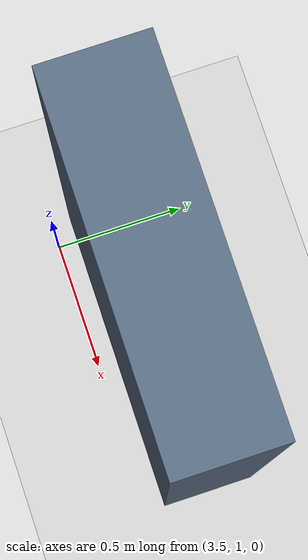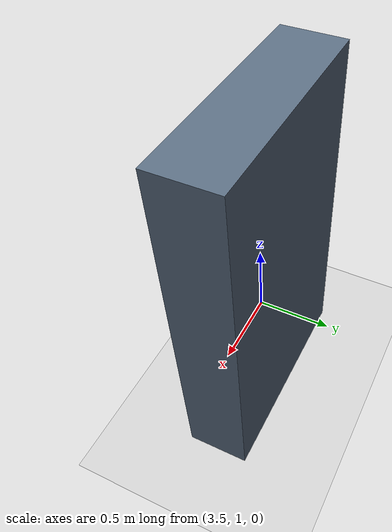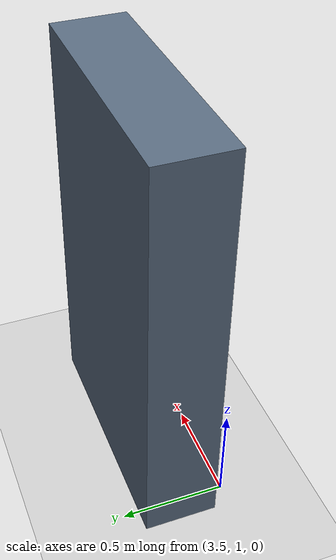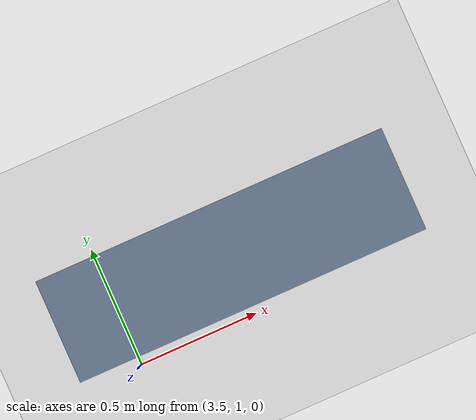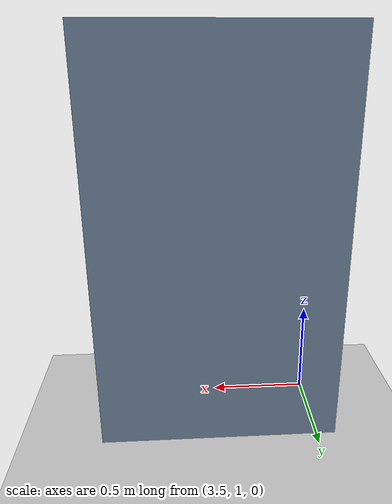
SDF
<?xml version="1.0" ?>
<sdf version="1.6">
  <world name="default">
    <physics type="ode"><max_step_size>0.01</max_step_size><real_time_factor>1</real_time_factor><real_time_update_rate>100</real_time_update_rate></physics>
    <gui><camera name="user_camera"><pose>4 -10 8 0 0.55 1.5707</pose></camera></gui>
    <light name="sun" type="directional"><pose>0 0 10 0 0 0</pose><diffuse>0.8 0.8 0.8 1</diffuse><specular>0.2 0.2 0.2 1</specular><direction>-0.3 0.2 -1</direction></light>
    <include><uri>model://ground_plane</uri></include>
    <model name="occluding_partition">
      <static>true</static><pose>4 1.25 1 0 0 0</pose>
      <link name="partition"><collision name="collision"><geometry><box><size>1.2 0.35 2</size></box></geometry></collision><visual name="visual"><geometry><box><size>1.2 0.35 2</size></box></geometry><material><ambient>0.35 0.42 0.50 1</ambient><diffuse>0.35 0.42 0.50 1</diffuse></material></visual></link>
    </model>
  </world>
</sdf>
